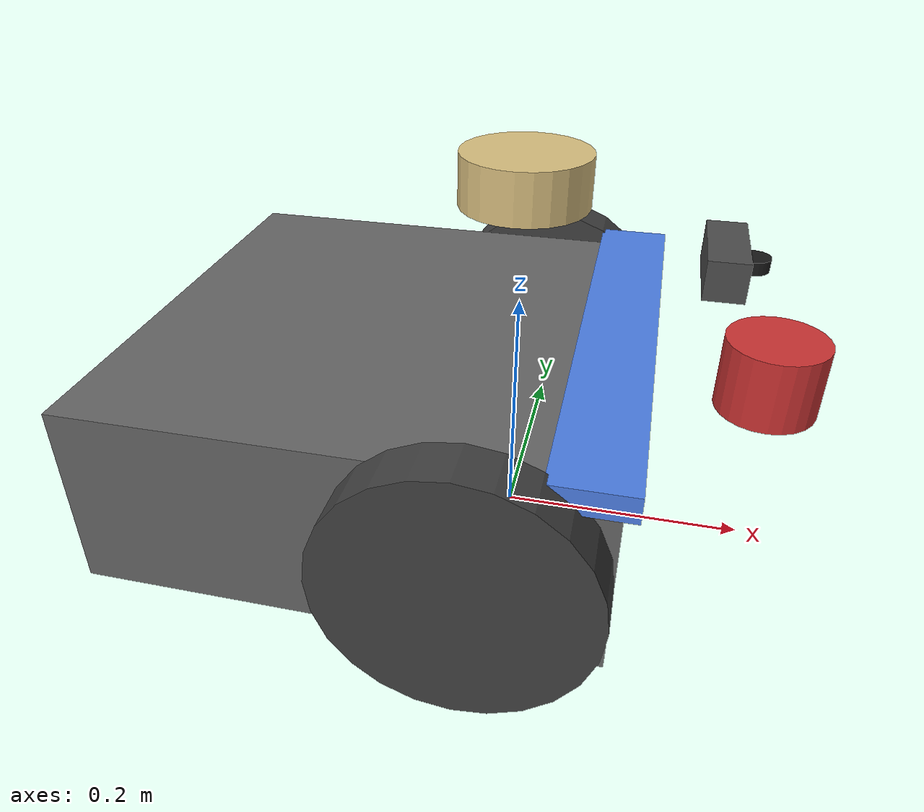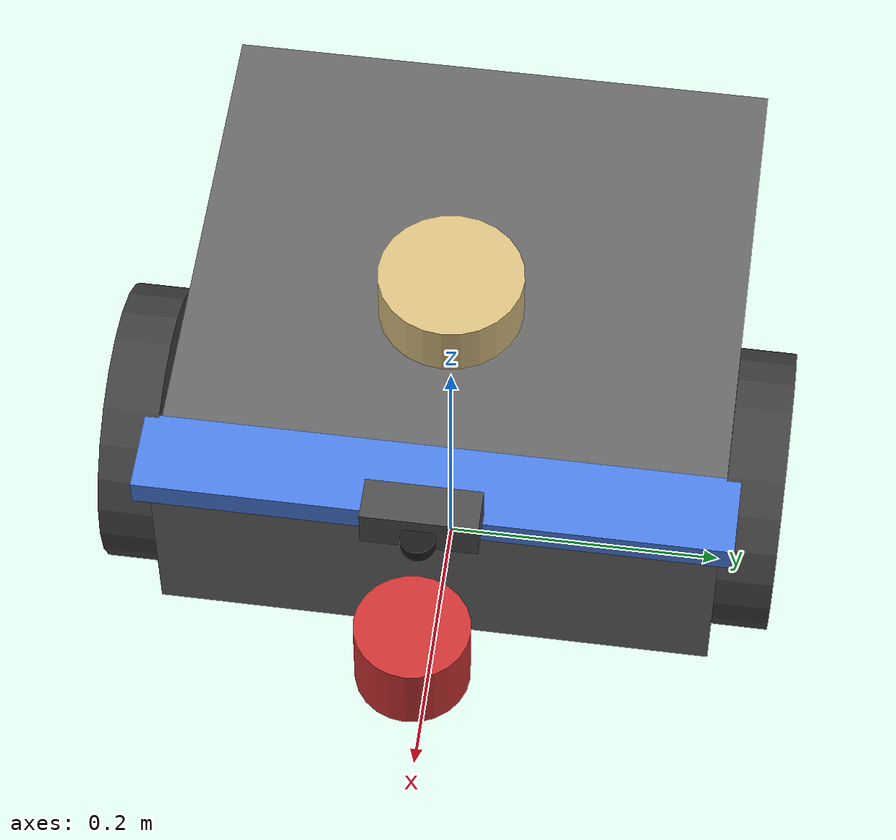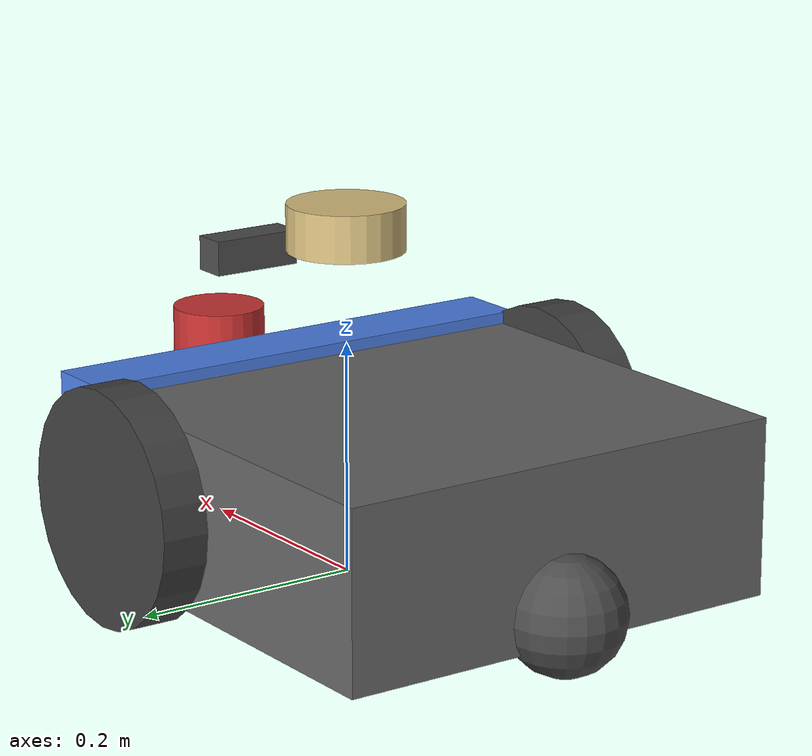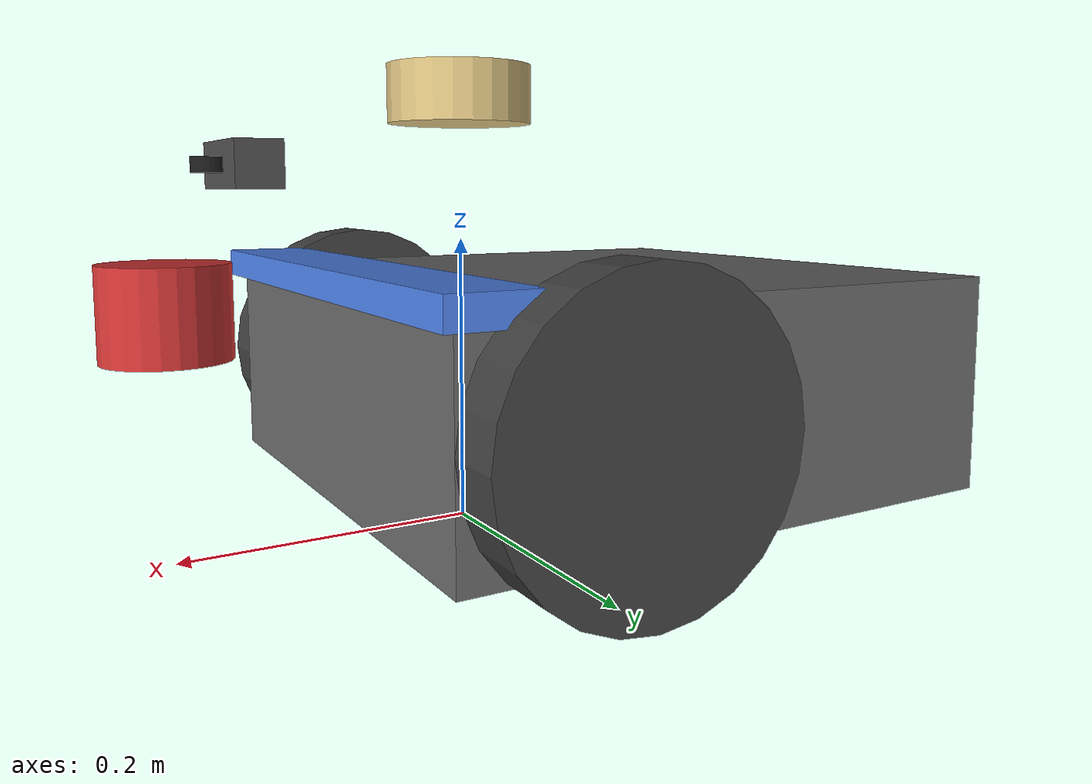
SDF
<?xml version="1.0" ?>
<sdf version="1.8">
    <model name='courier_robot'>
        <pose>0 0 0.1 0 0 0</pose>

        <!-- Base link (main robot frame) -->
        <link name='base_link'>
            <pose>0 0 0 0 0 0</pose>
            <inertial>
                <mass>0.01</mass>
                <inertia>
                    <ixx>0.0001</ixx> <ixy>0</ixy> <ixz>0</ixz>
                    <iyy>0.0001</iyy> <iyz>0</iyz> <izz>0.0001</izz>
                </inertia>
            </inertial>
        </link>

        <!-- Base footprint (ground projection) -->
        <link name='base_footprint'>
            <pose>0 0 -0.1 0 0 0</pose>
        </link>

        <joint name='base_footprint_joint' type='fixed'>
            <parent>base_link</parent>
            <child>base_footprint</child>
        </joint>

        <!-- Main chassis - Professional dark gray -->
        <link name='chassis'>
            <pose>-0.1 0 0 0 0 0</pose>
            <inertial>
                <mass>1.14395</mass>
                <inertia>
                    <ixx>0.095329</ixx> <ixy>0</ixy> <ixz>0</ixz>
                    <iyy>0.381317</iyy> <iyz>0</iyz> <izz>0.476646</izz>
                </inertia>
            </inertial>
            <!-- Main body - Dark gray -->
            <visual name='body'>
                <geometry><box><size>0.4 0.4 0.15</size></box></geometry>
                <material>
                    <ambient>0.3 0.3 0.3 1</ambient>
                    <diffuse>0.4 0.4 0.4 1</diffuse>
                    <specular>0.3 0.3 0.3 1</specular>
                </material>
            </visual>
            <!-- Front accent - Blue stripe -->
            <visual name='front_accent'>
                <pose>0.18 0 0.075 0 0 0</pose>
                <geometry><box><size>0.06 0.42 0.02</size></box></geometry>
                <material>
                    <ambient>0.2 0.4 0.8 1</ambient>
                    <diffuse>0.3 0.5 0.9 1</diffuse>
                </material>
            </visual>
            <collision name='collision'>
                <geometry><box><size>0.4 0.4 0.15</size></box></geometry>
            </collision>
        </link>

        <joint name='chassis_joint' type='fixed'>
            <parent>base_link</parent>
            <child>chassis</child>
        </joint>

        <!-- Caster wheel -->
        <link name='caster'>
            <pose>-0.3 0 -0.05 0 0 0</pose>
            <collision name='collision'><geometry><sphere><radius>0.05</radius></sphere></geometry></collision>
            <visual name='visual'>
                <geometry><sphere><radius>0.05</radius></sphere></geometry>
                <material>
                    <ambient>0.2 0.2 0.2 1</ambient>
                    <diffuse>0.3 0.3 0.3 1</diffuse>
                </material>
            </visual>
        </link>
        <joint name='caster_wheel' type='ball'>
            <parent>chassis</parent>
            <child>caster</child>
        </joint>

        <!-- ✨ LEFT WHEEL - Dark metallic ✨ -->
        <link name='left_wheel'>
            <pose>0 0.22 0 -1.5707 0 0</pose>
            <inertial>
                <mass>1</mass>
                <inertia>
                    <ixx>0.043333</ixx> <ixy>0</ixy> <ixz>0</ixz>
                    <iyy>0.043333</iyy> <iyz>0</iyz> <izz>0.08</izz>
                </inertia>
            </inertial>
            <visual name='visual'>
                <geometry><cylinder><radius>0.1</radius><length>0.04</length></cylinder></geometry>
                <material>
                    <ambient>0.15 0.15 0.15 1</ambient>
                    <diffuse>0.25 0.25 0.25 1</diffuse>
                    <specular>0.4 0.4 0.4 1</specular>
                </material>
            </visual>
            <collision name='collision'>
                <geometry><cylinder><radius>0.1</radius><length>0.04</length></cylinder></geometry>
            </collision>
        </link>

        <link name='right_wheel'>
            <pose>0 -0.22 0 -1.5707 0 0</pose>
            <inertial>
                <mass>1</mass>
                <inertia>
                    <ixx>0.043333</ixx> <ixy>0</ixy> <ixz>0</ixz>
                    <iyy>0.043333</iyy> <iyz>0</iyz> <izz>0.08</izz>
                </inertia>
            </inertial>
            <!-- ✨ RIGHT WHEEL - Dark metallic ✨ -->
            <visual name='visual'>
                <geometry><cylinder><radius>0.1</radius><length>0.04</length></cylinder></geometry>
                <material>
                    <ambient>0.15 0.15 0.15 1</ambient>
                    <diffuse>0.25 0.25 0.25 1</diffuse>
                    <specular>0.4 0.4 0.4 1</specular>
                </material>
            </visual>
            <collision name='collision'>
                <geometry><cylinder><radius>0.1</radius><length>0.04</length></cylinder></geometry>
            </collision>
        </link>

        <joint name='left_wheel_joint' type='revolute'>
            <parent>chassis</parent>
            <child>left_wheel</child>
            <axis><xyz>0 0 1</xyz></axis>
        </joint>
        <joint name='right_wheel_joint' type='revolute'>
            <parent>chassis</parent>
            <child>right_wheel</child>
            <axis><xyz>0 0 1</xyz></axis>
        </joint>

        <!-- IMU Sensor -->
        <link name='imu_link'>
            <pose>0 0 0.1 0 0 0</pose>
            <inertial>
                <mass>0.01</mass>
                <inertia>
                    <ixx>0.0001</ixx> <ixy>0</ixy> <ixz>0</ixz>
                    <iyy>0.0001</iyy> <iyz>0</iyz> <izz>0.0001</izz>
                </inertia>
            </inertial>
            <sensor name='imu_sensor' type='imu'>
                <always_on>1</always_on>
                <update_rate>20</update_rate>
                <imu>
                    <angular_velocity>
                        <x><noise type="gaussian"><mean>0</mean><stddev>0.009</stddev></noise></x>
                        <y><noise type="gaussian"><mean>0</mean><stddev>0.009</stddev></noise></y>
                        <z><noise type="gaussian"><mean>0</mean><stddev>0.009</stddev></noise></z>
                    </angular_velocity>
                    <linear_acceleration>
                        <x><noise type="gaussian"><mean>0</mean><stddev>0.017</stddev></noise></x>
                        <y><noise type="gaussian"><mean>0</mean><stddev>0.017</stddev></noise></y>
                        <z><noise type="gaussian"><mean>0</mean><stddev>0.017</stddev></noise></z>
                    </linear_acceleration>
                </imu>
                <topic>imu</topic>
            </sensor>
        </link>
        <joint name='imu_joint' type='fixed'>
            <parent>chassis</parent>
            <child>imu_link</child>
        </joint>

        <!-- ✨ ARM/GRIPPER - Red for visibility ✨ -->
        <link name='gripper'>
            <pose>0.2 0 0.06 0 0 0</pose>
            <inertial>
                <mass>0.1</mass>
                <inertia>
                    <ixx>0.0001</ixx> <ixy>0</ixy> <ixz>0</ixz>
                    <iyy>0.0001</iyy> <iyz>0</iyz> <izz>0.0001</izz>
                </inertia>
            </inertial>
            <!-- Gripper cup - Red for visibility -->
            <visual name='gripper_visual'>
                <geometry><cylinder><radius>0.04</radius><length>0.06</length></cylinder></geometry>
                <material>
                    <ambient>0.6 0.1 0.1 1</ambient>
                    <diffuse>0.8 0.2 0.2 1</diffuse>
                </material>
            </visual>
        </link>
        <joint name='gripper_joint' type='fixed'>
            <parent>chassis</parent>
            <child>gripper</child>
        </joint>

        <!-- Camera - Clean black -->
        <link name='camera_link'>
            <pose>0.15 0 0.15 0 0 0</pose>
            <inertial>
                <mass>0.05</mass>
                <inertia>
                    <ixx>0.0001</ixx> <ixy>0</ixy> <ixz>0</ixz>
                    <iyy>0.0001</iyy> <iyz>0</iyz> <izz>0.0001</izz>
                </inertia>
            </inertial>
            <!-- Camera body -->
            <visual name='camera_visual'>
                <geometry><box><size>0.03 0.08 0.03</size></box></geometry>
                <material>
                    <ambient>0.2 0.2 0.2 1</ambient>
                    <diffuse>0.3 0.3 0.3 1</diffuse>
                </material>
            </visual>
            <!-- Camera lens - dark -->
            <visual name='camera_lens'>
                <pose>0.02 0 0 0 0 0</pose>
                <geometry><cylinder><radius>0.012</radius><length>0.01</length></cylinder></geometry>
                <material>
                    <ambient>0.05 0.05 0.05 1</ambient>
                    <diffuse>0.1 0.1 0.1 1</diffuse>
                </material>
            </visual>
            <sensor name='camera' type='camera'>
                <update_rate>20</update_rate>
                <camera>
                    <horizontal_fov>1.5708</horizontal_fov>
                    <image>
                        <width>640</width>
                        <height>480</height>
                        <format>RGB_INT8</format>
                    </image>
                    <clip>
                        <near>0.05</near>
                        <far>15</far>
                    </clip>
                    <noise>
                        <type>gaussian</type>
                        <mean>0</mean>
                        <stddev>0.007</stddev>
                    </noise>
                </camera>
                <always_on>1</always_on>
                <visualize>true</visualize>
                <topic>camera</topic>
            </sensor>
        </link>
        <joint name='camera_joint' type='fixed'>
            <parent>chassis</parent>
            <child>camera_link</child>
        </joint>

        <!-- LIDAR on top - Gold/brass color -->
        <link name='lidar_link'>
            <pose>0 0 0.2 0 0 0</pose>
            <inertial>
                <mass>0.1</mass>
                <inertia>
                    <ixx>0.0001</ixx> <ixy>0</ixy> <ixz>0</ixz>
                    <iyy>0.0001</iyy> <iyz>0</iyz> <izz>0.0001</izz>
                </inertia>
            </inertial>
            <!-- LIDAR body - Gold/brass -->
            <visual name='lidar_visual'>
                <geometry><cylinder><radius>0.05</radius><length>0.04</length></cylinder></geometry>
                <material>
                    <ambient>0.7 0.6 0.4 1</ambient>
                    <diffuse>0.85 0.75 0.5 1</diffuse>
                    <specular>0.6 0.5 0.3 1</specular>
                </material>
            </visual>
            <sensor name='gpu_lidar' type='gpu_lidar'>
                <update_rate>10</update_rate>
                <lidar>
                    <scan>
                        <horizontal>
                            <samples>360</samples>
                            <resolution>1</resolution>
                            <min_angle>-3.14159</min_angle>
                            <max_angle>3.14159</max_angle>
                        </horizontal>
                    </scan>
                    <range>
                        <min>0.15</min>
                        <max>6.0</max>
                        <resolution>0.01</resolution>
                    </range>
                    <noise>
                        <type>gaussian</type>
                        <mean>0</mean>
                        <stddev>0.01</stddev>
                    </noise>
                </lidar>
                <always_on>1</always_on>
                <visualize>true</visualize>
                <topic>scan</topic>
            </sensor>
        </link>
        <joint name='lidar_joint' type='fixed'>
            <parent>chassis</parent>
            <child>lidar_link</child>
        </joint>

        <!-- Control and sensor plugins -->
        <plugin filename="gz-sim-diff-drive-system" name="gz::sim::systems::DiffDrive">
            <left_joint>left_wheel_joint</left_joint>
            <right_joint>right_wheel_joint</right_joint>
            <wheel_separation>0.44</wheel_separation>
            <wheel_radius>0.1</wheel_radius>
            <topic>cmd_vel</topic>
            <odom_topic>odom</odom_topic>
            <tf_topic>tf</tf_topic>
            <frame_id>odom</frame_id>
            <child_frame_id>base_link</child_frame_id>
        </plugin>

        <plugin filename="gz-sim-sensors-system" name="gz::sim::systems::Sensors">
            <render_engine>ogre2</render_engine>
        </plugin>
    </model>
</sdf>
